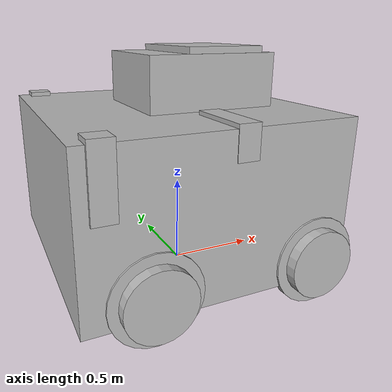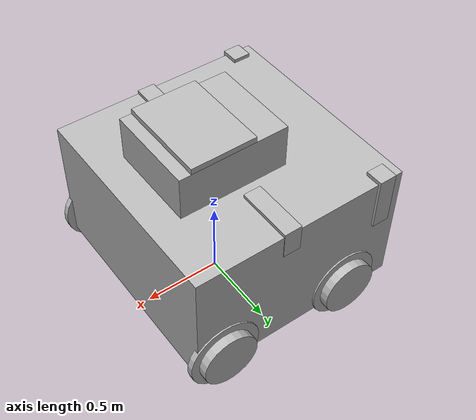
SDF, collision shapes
<?xml version='1.0' encoding='utf-8'?>
<sdf version="1.7">
  <model name="subway_v2">
    <link name="base_footprint">
      <inertial>
        <pose>0.003449 0.000193 0.448494 0 -0 0</pose>
        <mass>16.8848</mass>
        <inertia>
          <ixx>1.0012</ixx>
          <ixy>-0.000465875</ixy>
          <ixz>-0.0413279</ixz>
          <iyy>2.31374</iyy>
          <iyz>-0.00100541</iyz>
          <izz>2.80699</izz>
        </inertia>
      </inertial>
      <collision name="base_footprint_fixed_joint_lump__base_link_collision_collision">
        <pose>-0.081924 0 0.545704 -1.5708 -0 -1.5708</pose>
        <geometry>
          <box>
            <size>1.43104 0.829804 1.39646</size>
          </box>
        </geometry>
        <surface>
          <contact>
            <ode />
          </contact>
          <friction>
            <ode>
              <mu>0.001</mu>
              <mu2>0.001</mu2>
            </ode>
          </friction>
        </surface>
      </collision>
      <collision name="base_footprint_fixed_joint_lump__leida_collision_collision_1">
        <pose>0.501464 0 0.67493 -1.5708 -0 -1.5708</pose>
        <geometry>
          <box>
            <size>0.300638 0.186396 0.139496</size>
          </box>
        </geometry>
      </collision>
      <collision name="base_footprint_fixed_joint_lump__xj1_collision_collision_2">
        <pose>0.000225 -0.538469 0.895359 1.5708 0 -0</pose>
        <geometry>
          <box>
            <size>0.113792 0.17268 0.361088</size>
          </box>
        </geometry>
      </collision>
      <collision name="base_footprint_fixed_joint_lump__xj2_collision_collision_3">
        <pose>-0.000225 0.538469 0.895359 1.5708 -0 3.14159</pose>
        <geometry>
          <box>
            <size>0.113792 0.17268 0.361088</size>
          </box>
        </geometry>
      </collision>
      <collision name="base_footprint_fixed_joint_lump__xj3_collision_collision_4">
        <pose>-0.656669 -0.674932 0.810217 3.14159 0 -0</pose>
        <geometry>
          <box>
            <size>0.113792 0.114017 0.34874</size>
          </box>
        </geometry>
      </collision>
      <collision name="base_footprint_fixed_joint_lump__xj4_collision_collision_5">
        <pose>-0.657119 0.674932 0.810217 3.14159 -0 3.14159</pose>
        <geometry>
          <box>
            <size>0.113792 0.114017 0.34874</size>
          </box>
        </geometry>
      </collision>
      <collision name="base_footprint_fixed_joint_lump__yuntai_collision_collision_6">
        <pose>0.132241 0 0.949654 1.5708 0 -0</pose>
        <geometry>
          <box>
            <size>0.420893 0.657679 0.577225</size>
          </box>
        </geometry>
      </collision>
      <visual name="base_footprint_fixed_joint_lump__base_link_visual">
        <pose>0.032782 0.010309 0.644866 -1.5708 -0 -1.5708</pose>
        <geometry>
          <mesh>
            <scale>3.00638 3.00638 3.00638</scale>
            <uri>model://subway_v2/meshes/base_link.STL</uri>
          </mesh>
        </geometry>
      </visual>
      <visual name="base_footprint_fixed_joint_lump__w1_fixed_mount_visual_visual_1">
        <pose>0.435925 -0.44765 0.335209 1.5708 1.40236 -0</pose>
        <geometry>
          <mesh>
            <scale>3.00638 3.00638 3.00638</scale>
            <uri>model://subway_v2/meshes/w1_mount.STL</uri>
          </mesh>
        </geometry>
      </visual>
      <visual name="base_footprint_fixed_joint_lump__w2_fixed_mount_visual_visual_2">
        <pose>0.435925 0.44765 0.335209 1.5708 -1.40236 3.14159</pose>
        <geometry>
          <mesh>
            <scale>3.00638 3.00638 3.00638</scale>
            <uri>model://subway_v2/meshes/w2_mount.STL</uri>
          </mesh>
        </geometry>
      </visual>
      <visual name="base_footprint_fixed_joint_lump__w3_fixed_mount_visual_visual_3">
        <pose>-0.435925 0.44765 0.335209 1.5708 -0.502733 3.14159</pose>
        <geometry>
          <mesh>
            <scale>3.00638 3.00638 3.00638</scale>
            <uri>model://subway_v2/meshes/w3_mount.STL</uri>
          </mesh>
        </geometry>
      </visual>
      <visual name="base_footprint_fixed_joint_lump__w4_fixed_mount_visual_visual_4">
        <pose>-0.435925 -0.44765 0.335209 1.5708 0.502733 -0</pose>
        <geometry>
          <mesh>
            <scale>3.00638 3.00638 3.00638</scale>
            <uri>model://subway_v2/meshes/w4_mount.STL</uri>
          </mesh>
        </geometry>
      </visual>
      <visual name="base_footprint_fixed_joint_lump__xj1_visual_5">
        <pose>-0 -0.481021 0.685452 1.5708 0 -0</pose>
        <geometry>
          <mesh>
            <scale>3.00638 3.00638 3.00638</scale>
            <uri>model://subway_v2/meshes/xj1.STL</uri>
          </mesh>
        </geometry>
      </visual>
      <visual name="base_footprint_fixed_joint_lump__xj2_visual_6">
        <pose>-0 0.481021 0.685452 1.5708 -0 3.14159</pose>
        <geometry>
          <mesh>
            <scale>3.00638 3.00638 3.00638</scale>
            <uri>model://subway_v2/meshes/xj2.STL</uri>
          </mesh>
        </geometry>
      </visual>
      <visual name="base_footprint_fixed_joint_lump__xj3_visual_7">
        <pose>-0.656894 -0.674932 0.966549 3.14159 0 -0</pose>
        <geometry>
          <mesh>
            <scale>3.00638 3.00638 3.00638</scale>
            <uri>model://subway_v2/meshes/xj3.STL</uri>
          </mesh>
        </geometry>
      </visual>
      <visual name="base_footprint_fixed_joint_lump__xj4_visual_8">
        <pose>-0.656894 0.674932 0.966549 3.14159 -0 3.14159</pose>
        <geometry>
          <mesh>
            <scale>3.00638 3.00638 3.00638</scale>
            <uri>model://subway_v2/meshes/xj4.STL</uri>
          </mesh>
        </geometry>
      </visual>
      <visual name="base_footprint_fixed_joint_lump__yuntai_visual_9">
        <pose>0.132241 -0.232393 1.14393 1.5708 0 -0</pose>
        <geometry>
          <mesh>
            <scale>3.00638 3.00638 3.00638</scale>
            <uri>model://subway_v2/meshes/yuntai.STL</uri>
          </mesh>
        </geometry>
      </visual>
      <sensor name="xj1_camera_sensor" type="camera">
        <always_on>1</always_on>
        <visualize>0</visualize>
        <update_rate>30</update_rate>
        <camera name="xj1_camera">
          <horizontal_fov>1.22173</horizontal_fov>
          <image>
            <width>1440</width>
            <height>1080</height>
            <format>B8G8R8</format>
          </image>
          <clip>
            <near>0.05</near>
            <far>100</far>
          </clip>
          <noise>
            <type>gaussian</type>
            <mean>0</mean>
            <stddev>0.01</stddev>
          </noise>
          <distortion>
            <k1>-0.099402</k1>
            <k2>0.115175</k2>
            <k3>0.0</k3>
            <p1>-0.003985</p1>
            <p2>-0.001845</p2>
            <center>0.4835390972222 0.5071845925926</center>
          </distortion>
          <lens>
            <intrinsics>
              <fx>1028.2670861548688</fx>
              <fy>1028.3315643616631</fy>
              <cx>696.2963</cx>
              <cy>547.75936</cy>
              <s>0</s>
            </intrinsics>
            <type>stereographic</type>
            <scale_to_hfov>1</scale_to_hfov>
          </lens>
        </camera>
        <plugin name="xj1_camera_plugin" filename="libgazebo_ros_camera.so">
          <ros>
            <namespace>/subway_v2</namespace>
          </ros>
          <camera_name>xj1</camera_name>
          <frame_name>xj1_optical_frame</frame_name>
          <focal_length>1028.2670861548688</focal_length>
          <cx>696.2963</cx>
          <cy>547.75936</cy>
          <border_crop>0</border_crop>
          <rectification_matrix>1 0 0 0 1 0 0 0 1</rectification_matrix>
          <P_fx>1013.3186295621878</P_fx>
          <P_fy>1018.5246022239418</P_fy>
          <P_cx>693.56983</P_cx>
          <P_cy>545.3029</P_cy>
        </plugin>
        <pose>-0 -0.536573 0.685452 -0 -0.436332 -1.5708</pose>
      </sensor>
      <sensor name="xj2_camera_sensor" type="camera">
        <always_on>1</always_on>
        <visualize>0</visualize>
        <update_rate>30</update_rate>
        <camera name="xj2_camera">
          <horizontal_fov>1.22173</horizontal_fov>
          <image>
            <width>1440</width>
            <height>1080</height>
            <format>B8G8R8</format>
          </image>
          <clip>
            <near>0.05</near>
            <far>100</far>
          </clip>
          <noise>
            <type>gaussian</type>
            <mean>0</mean>
            <stddev>0.01</stddev>
          </noise>
          <distortion>
            <k1>-0.099402</k1>
            <k2>0.115175</k2>
            <k3>0.0</k3>
            <p1>-0.003985</p1>
            <p2>-0.001845</p2>
            <center>0.4835390972222 0.5071845925926</center>
          </distortion>
          <lens>
            <intrinsics>
              <fx>1028.2670861548688</fx>
              <fy>1028.3315643616631</fy>
              <cx>696.2963</cx>
              <cy>547.75936</cy>
              <s>0</s>
            </intrinsics>
            <type>stereographic</type>
            <scale_to_hfov>1</scale_to_hfov>
          </lens>
        </camera>
        <plugin name="xj2_camera_plugin" filename="libgazebo_ros_camera.so">
          <ros>
            <namespace>/subway_v2</namespace>
          </ros>
          <camera_name>xj2</camera_name>
          <frame_name>xj2_optical_frame</frame_name>
          <focal_length>1028.2670861548688</focal_length>
          <cx>696.2963</cx>
          <cy>547.75936</cy>
          <border_crop>0</border_crop>
          <rectification_matrix>1 0 0 0 1 0 0 0 1</rectification_matrix>
          <P_fx>1013.3186295621878</P_fx>
          <P_fy>1018.5246022239418</P_fy>
          <P_cx>693.56983</P_cx>
          <P_cy>545.3029</P_cy>
        </plugin>
        <pose>-0 0.727544 0.685452 0 -0.436332 1.5708</pose>
      </sensor>
      <sensor name="xj3_camera_sensor" type="camera">
        <always_on>1</always_on>
        <visualize>0</visualize>
        <update_rate>30</update_rate>
        <camera name="xj3_camera">
          <horizontal_fov>1.22173</horizontal_fov>
          <image>
            <width>1440</width>
            <height>1080</height>
            <format>B8G8R8</format>
          </image>
          <clip>
            <near>0.05</near>
            <far>100</far>
          </clip>
          <noise>
            <type>gaussian</type>
            <mean>0</mean>
            <stddev>0.01</stddev>
          </noise>
          <distortion>
            <k1>-0.099402</k1>
            <k2>0.115175</k2>
            <k3>0.0</k3>
            <p1>-0.003985</p1>
            <p2>-0.001845</p2>
            <center>0.4835390972222 0.5071845925926</center>
          </distortion>
          <lens>
            <intrinsics>
              <fx>1028.2670861548688</fx>
              <fy>1028.3315643616631</fy>
              <cx>696.2963</cx>
              <cy>547.75936</cy>
              <s>0</s>
            </intrinsics>
            <type>stereographic</type>
            <scale_to_hfov>1</scale_to_hfov>
          </lens>
        </camera>
        <plugin name="xj3_camera_plugin" filename="libgazebo_ros_camera.so">
          <ros>
            <namespace>/subway_v2</namespace>
          </ros>
          <camera_name>xj3</camera_name>
          <frame_name>xj3_optical_frame</frame_name>
          <focal_length>1028.2670861548688</focal_length>
          <cx>696.2963</cx>
          <cy>547.75936</cy>
          <border_crop>0</border_crop>
          <rectification_matrix>1 0 0 0 1 0 0 0 1</rectification_matrix>
          <P_fx>1013.3186295621878</P_fx>
          <P_fy>1018.5246022239418</P_fy>
          <P_cx>693.56983</P_cx>
          <P_cy>545.3029</P_cy>
        </plugin>
        <pose>-0.656894 -0.674932 0.629834 -0 1.309 -1.5708</pose>
      </sensor>
      <sensor name="xj4_camera_sensor" type="camera">
        <always_on>1</always_on>
        <visualize>0</visualize>
        <update_rate>30</update_rate>
        <camera name="xj4_camera">
          <horizontal_fov>0.784537</horizontal_fov>
          <image>
            <width>1440</width>
            <height>1080</height>
            <format>B8G8R8</format>
          </image>
          <clip>
            <near>0.05</near>
            <far>100</far>
          </clip>
          <noise>
            <type>gaussian</type>
            <mean>0</mean>
            <stddev>0.01</stddev>
          </noise>
          <distortion>
            <k1>-0.099402</k1>
            <k2>0.115175</k2>
            <k3>0.0</k3>
            <p1>-0.003985</p1>
            <p2>-0.001845</p2>
            <center>0.4835390972222 0.5071845925926</center>
          </distortion>
          <lens>
            <intrinsics>
              <fx>1740.3529088647258</fx>
              <fy>1740.4620389110569</fy>
              <cx>696.2963</cx>
              <cy>547.75936</cy>
              <s>0</s>
            </intrinsics>
            <type>stereographic</type>
            <scale_to_hfov>1</scale_to_hfov>
          </lens>
        </camera>
        <plugin name="xj4_camera_plugin" filename="libgazebo_ros_camera.so">
          <ros>
            <namespace>/subway_v2</namespace>
          </ros>
          <camera_name>xj4</camera_name>
          <frame_name>xj4_optical_frame</frame_name>
          <focal_length>1740.3529088647258</focal_length>
          <cx>696.2963</cx>
          <cy>547.75936</cy>
          <border_crop>0</border_crop>
          <rectification_matrix>1 0 0 0 1 0 0 0 1</rectification_matrix>
          <P_fx>1715.0524881234628</P_fx>
          <P_fy>1723.8636518642318</P_fy>
          <P_cx>693.56983</P_cx>
          <P_cy>545.3029</P_cy>
        </plugin>
        <pose>-0.656894 0.674932 0.735057 3.14159 1.57079 -1.57079</pose>
      </sensor>
    </link>
    <joint name="lidar_joint" type="fixed">
      <pose relative_to="base_footprint">0.574218 0 0.680943 0 0 -0</pose>
      <parent>base_footprint</parent>
      <child>lidar_link</child>
      <axis>
        <dynamics>
          <spring_reference>0</spring_reference>
          <spring_stiffness>0</spring_stiffness>
        </dynamics>
        <xyz>0 0 1</xyz>
        <limit>
          <lower>-1e+16</lower>
          <upper>1e+16</upper>
        </limit>
      </axis>
      <physics>
        <ode>
          <limit>
            <cfm>0</cfm>
            <erp>0.2</erp>
          </limit>
        </ode>
      </physics>
    </joint>
    <link name="lidar_link">
      <pose relative_to="lidar_joint">0 0 0 0 -0 0</pose>
      <inertial>
        <pose>0 0 0 0 -0 0</pose>
        <mass>0.001</mass>
        <inertia>
          <ixx>9.03832e-06</ixx>
          <ixy>0</ixy>
          <ixz>0</ixz>
          <iyy>9.03832e-06</iyy>
          <iyz>0</iyz>
          <izz>9.03832e-06</izz>
        </inertia>
      </inertial>
      <sensor name="odin1_lidar" type="gpu_ray">
        <always_on>1</always_on>
        <visualize>0</visualize>
        <pose>0 0 0 0 -0 0</pose>
        <update_rate>10</update_rate>
        <ray>
          <scan>
            <horizontal>
              <samples>240</samples>
              <resolution>1</resolution>
              <min_angle>-1.0472</min_angle>
              <max_angle>1.0472</max_angle>
            </horizontal>
            <vertical>
              <samples>180</samples>
              <resolution>1</resolution>
              <min_angle>-0.785398</min_angle>
              <max_angle>0.785398</max_angle>
            </vertical>
          </scan>
          <range>
            <min>0.2</min>
            <max>30</max>
            <resolution>0.01</resolution>
          </range>
          <noise>
            <type>gaussian</type>
            <mean>0</mean>
            <stddev>0.03</stddev>
          </noise>
        </ray>
        <plugin name="odin1_pointcloud_plugin" filename="libgazebo_ros_ray_sensor.so">
          <ros>
            <namespace>/odin1</namespace>
            <remapping>~/out:=cloud_raw</remapping>
          </ros>
          <output_type>sensor_msgs/PointCloud2</output_type>
          <frame_name>lidar_link</frame_name>
        </plugin>
      </sensor>
      <sensor name="odin1_rgb_camera" type="camera">
        <always_on>1</always_on>
        <visualize>0</visualize>
        <update_rate>10</update_rate>
        <pose>0.01462 0.034376 0.000445 -0.00208 -0.0061 -0.01139</pose>
        <camera name="odin1_rgb">
          <horizontal_fov>1.6527705344413242</horizontal_fov>
          <image>
            <width>1600</width>
            <height>1296</height>
            <format>R8G8B8</format>
          </image>
          <clip>
            <near>0.1</near>
            <far>100</far>
          </clip>
          <lens>
            <intrinsics>
              <fx>736.9688</fx>
              <fy>737.0365</fy>
              <cx>766.6570</cx>
              <cy>642.9091</cy>
              <s>0.2058</s>
            </intrinsics>
            <type>stereographic</type>
            <scale_to_hfov>1</scale_to_hfov>
          </lens>
        </camera>
        <plugin name="odin1_rgb_camera_plugin" filename="libgazebo_ros_camera.so">
          <ros>
            <namespace>/odin1</namespace>
            <remapping>rgb/camera_info:=rgb/camera_info_gazebo</remapping>
          </ros>
          <camera_name>rgb</camera_name>
          <frame_name>odin1_rgb_optical_frame</frame_name>
          <cx>766.6570</cx>
          <cy>642.9091</cy>
          <border_crop>0</border_crop>
          <rectification_matrix>1 0 0 0 1 0 0 0 1</rectification_matrix>
          <P_fx>736.9688</P_fx>
          <P_fy>737.0365</P_fy>
          <P_cx>766.6570</P_cx>
          <P_cy>642.9091</P_cy>
        </plugin>
      </sensor>
    </link>
    <joint name="imu_joint" type="fixed">
      <pose relative_to="lidar_link">0.02663 -0.03447 -0.02174 0 -0 0</pose>
      <parent>lidar_link</parent>
      <child>imu_link</child>
      <axis>
        <dynamics>
          <spring_reference>0</spring_reference>
          <spring_stiffness>0</spring_stiffness>
        </dynamics>
        <xyz>0 0 1</xyz>
        <limit>
          <lower>-1e+16</lower>
          <upper>1e+16</upper>
        </limit>
      </axis>
      <physics>
        <ode>
          <limit>
            <cfm>0</cfm>
            <erp>0.2</erp>
          </limit>
        </ode>
      </physics>
    </joint>
    <link name="imu_link">
      <pose relative_to="imu_joint">0 0 0 0 -0 0</pose>
      <inertial>
        <pose>0 0 0 0 -0 0</pose>
        <mass>0.001</mass>
        <inertia>
          <ixx>9.03832e-06</ixx>
          <ixy>0</ixy>
          <ixz>0</ixz>
          <iyy>9.03832e-06</iyy>
          <iyz>0</iyz>
          <izz>9.03832e-06</izz>
        </inertia>
      </inertial>
      <sensor name="odin1_imu" type="imu">
        <always_on>1</always_on>
        <update_rate>100</update_rate>
        <imu>
          <angular_velocity>
            <x>
              <noise type="gaussian">
                <mean>0</mean>
                <stddev>0.0002</stddev>
              </noise>
            </x>
            <y>
              <noise type="gaussian">
                <mean>0</mean>
                <stddev>0.0002</stddev>
              </noise>
            </y>
            <z>
              <noise type="gaussian">
                <mean>0</mean>
                <stddev>0.0002</stddev>
              </noise>
            </z>
          </angular_velocity>
          <linear_acceleration>
            <x>
              <noise type="gaussian">
                <mean>0</mean>
                <stddev>0.017</stddev>
              </noise>
            </x>
            <y>
              <noise type="gaussian">
                <mean>0</mean>
                <stddev>0.017</stddev>
              </noise>
            </y>
            <z>
              <noise type="gaussian">
                <mean>0</mean>
                <stddev>0.017</stddev>
              </noise>
            </z>
          </linear_acceleration>
        </imu>
        <plugin name="odin1_imu_plugin" filename="libgazebo_ros_imu_sensor.so">
          <initial_orientation_as_reference>0</initial_orientation_as_reference>
          <ros>
            <namespace>/odin1</namespace>
            <remapping>~/out:=imu</remapping>
          </ros>
        </plugin>
      </sensor>
    </link>
    <joint name="w1_joint" type="revolute">
      <pose relative_to="base_footprint">0.435925 -0.754 0.232992 1.5708 1.40236 -0</pose>
      <parent>base_footprint</parent>
      <child>w1</child>
      <axis>
        <xyz>0 0 -1</xyz>
        <limit>
          <lower>-1e+16</lower>
          <upper>1e+16</upper>
        </limit>
        <dynamics>
          <damping>0.2</damping>
          <friction>0.05</friction>
          <spring_reference>0</spring_reference>
          <spring_stiffness>0</spring_stiffness>
        </dynamics>
      </axis>
    </joint>
    <link name="w1">
      <pose relative_to="w1_joint">0 0 0 0 -0 0</pose>
      <inertial>
        <pose>0 0 -0.029012 0 -0 0</pose>
        <mass>0.5</mass>
        <inertia>
          <ixx>0.00734293</ixx>
          <ixy>0</ixy>
          <ixz>0</ixz>
          <iyy>0.00734293</iyy>
          <iyz>0</iyz>
          <izz>0.0135716</izz>
        </inertia>
      </inertial>
      <collision name="w1_tread_collision_collision">
        <pose>0 0 0 0 -0 0</pose>
        <geometry>
          <cylinder>
            <length>0.0571212</length>
            <radius>0.180383</radius>
          </cylinder>
        </geometry>
        <surface>
          <contact>
            <ode>
              <kp>1e+06</kp>
              <kd>10</kd>
              <max_vel>0.1</max_vel>
              <min_depth>0.001</min_depth>
            </ode>
          </contact>
          <friction>
            <ode>
              <mu>1</mu>
              <mu2>1</mu2>
            </ode>
          </friction>
        </surface>
      </collision>
      <collision name="w1_flange_collision_collision_1">
        <pose>0 0 -0.048102 0 -0 0</pose>
        <geometry>
          <cylinder>
            <length>0.0390829</length>
            <radius>0.232994</radius>
          </cylinder>
        </geometry>
        <surface>
          <contact>
            <ode>
              <kp>1e+06</kp>
              <kd>10</kd>
              <max_vel>0.1</max_vel>
              <min_depth>0.001</min_depth>
            </ode>
          </contact>
          <friction>
            <ode>
              <mu>1</mu>
              <mu2>1</mu2>
            </ode>
          </friction>
        </surface>
      </collision>
      <visual name="w1_visual">
        <pose>-0.10077 0.017136 -0.30635 0 -0 0</pose>
        <geometry>
          <mesh>
            <scale>3.00638 3.00638 3.00638</scale>
            <uri>model://subway_v2/meshes/w1_wheel.STL</uri>
          </mesh>
        </geometry>
      </visual>
    </link>
    <joint name="w2_joint" type="revolute">
      <pose relative_to="base_footprint">0.435925 0.754 0.232992 1.5708 -1.40236 3.14159</pose>
      <parent>base_footprint</parent>
      <child>w2</child>
      <axis>
        <xyz>0 0 1</xyz>
        <limit>
          <lower>-1e+16</lower>
          <upper>1e+16</upper>
        </limit>
        <dynamics>
          <damping>0.2</damping>
          <friction>0.05</friction>
          <spring_reference>0</spring_reference>
          <spring_stiffness>0</spring_stiffness>
        </dynamics>
      </axis>
    </joint>
    <link name="w2">
      <pose relative_to="w2_joint">0 0 0 0 -0 0</pose>
      <inertial>
        <pose>0 0 -0.029012 0 -0 0</pose>
        <mass>0.5</mass>
        <inertia>
          <ixx>0.00734293</ixx>
          <ixy>0</ixy>
          <ixz>0</ixz>
          <iyy>0.00734293</iyy>
          <iyz>0</iyz>
          <izz>0.0135716</izz>
        </inertia>
      </inertial>
      <collision name="w2_tread_collision_collision">
        <pose>0 0 0 0 -0 0</pose>
        <geometry>
          <cylinder>
            <length>0.0571212</length>
            <radius>0.180383</radius>
          </cylinder>
        </geometry>
        <surface>
          <contact>
            <ode>
              <kp>1e+06</kp>
              <kd>10</kd>
              <max_vel>0.1</max_vel>
              <min_depth>0.001</min_depth>
            </ode>
          </contact>
          <friction>
            <ode>
              <mu>1</mu>
              <mu2>1</mu2>
            </ode>
          </friction>
        </surface>
      </collision>
      <collision name="w2_flange_collision_collision_1">
        <pose>0 0 -0.048102 0 -0 0</pose>
        <geometry>
          <cylinder>
            <length>0.0390829</length>
            <radius>0.232994</radius>
          </cylinder>
        </geometry>
        <surface>
          <contact>
            <ode>
              <kp>1e+06</kp>
              <kd>10</kd>
              <max_vel>0.1</max_vel>
              <min_depth>0.001</min_depth>
            </ode>
          </contact>
          <friction>
            <ode>
              <mu>1</mu>
              <mu2>1</mu2>
            </ode>
          </friction>
        </surface>
      </collision>
      <visual name="w2_visual">
        <pose>0.10077 0.017136 -0.30635 0 -0 0</pose>
        <geometry>
          <mesh>
            <scale>3.00638 3.00638 3.00638</scale>
            <uri>model://subway_v2/meshes/w2_wheel.STL</uri>
          </mesh>
        </geometry>
      </visual>
    </link>
    <joint name="w3_joint" type="revolute">
      <pose relative_to="base_footprint">-0.435925 0.754 0.232992 1.5708 -0.502733 3.14159</pose>
      <parent>base_footprint</parent>
      <child>w3</child>
      <axis>
        <xyz>0 0 1</xyz>
        <limit>
          <lower>-1e+16</lower>
          <upper>1e+16</upper>
        </limit>
        <dynamics>
          <damping>0.2</damping>
          <friction>0.05</friction>
          <spring_reference>0</spring_reference>
          <spring_stiffness>0</spring_stiffness>
        </dynamics>
      </axis>
    </joint>
    <link name="w3">
      <pose relative_to="w3_joint">0 0 0 0 -0 0</pose>
      <inertial>
        <pose>0 0 -0.029012 0 -0 0</pose>
        <mass>0.5</mass>
        <inertia>
          <ixx>0.00734293</ixx>
          <ixy>0</ixy>
          <ixz>0</ixz>
          <iyy>0.00734293</iyy>
          <iyz>0</iyz>
          <izz>0.0135716</izz>
        </inertia>
      </inertial>
      <collision name="w3_tread_collision_collision">
        <pose>0 0 0 0 -0 0</pose>
        <geometry>
          <cylinder>
            <length>0.0571212</length>
            <radius>0.180383</radius>
          </cylinder>
        </geometry>
        <surface>
          <contact>
            <ode>
              <kp>1e+06</kp>
              <kd>10</kd>
              <max_vel>0.1</max_vel>
              <min_depth>0.001</min_depth>
            </ode>
          </contact>
          <friction>
            <ode>
              <mu>1</mu>
              <mu2>1</mu2>
            </ode>
          </friction>
        </surface>
      </collision>
      <collision name="w3_flange_collision_collision_1">
        <pose>0 0 -0.048102 0 -0 0</pose>
        <geometry>
          <cylinder>
            <length>0.0390829</length>
            <radius>0.232994</radius>
          </cylinder>
        </geometry>
        <surface>
          <contact>
            <ode>
              <kp>1e+06</kp>
              <kd>10</kd>
              <max_vel>0.1</max_vel>
              <min_depth>0.001</min_depth>
            </ode>
          </contact>
          <friction>
            <ode>
              <mu>1</mu>
              <mu2>1</mu2>
            </ode>
          </friction>
        </surface>
      </collision>
      <visual name="w3_visual">
        <pose>0.04925 0.08957 -0.30635 0 -0 0</pose>
        <geometry>
          <mesh>
            <scale>3.00638 3.00638 3.00638</scale>
            <uri>model://subway_v2/meshes/w3_wheel.STL</uri>
          </mesh>
        </geometry>
      </visual>
    </link>
    <joint name="w4_joint" type="revolute">
      <pose relative_to="base_footprint">-0.435925 -0.754 0.232992 1.5708 0.502733 -0</pose>
      <parent>base_footprint</parent>
      <child>w4</child>
      <axis>
        <xyz>0 0 -1</xyz>
        <limit>
          <lower>-1e+16</lower>
          <upper>1e+16</upper>
        </limit>
        <dynamics>
          <damping>0.2</damping>
          <friction>0.05</friction>
          <spring_reference>0</spring_reference>
          <spring_stiffness>0</spring_stiffness>
        </dynamics>
      </axis>
    </joint>
    <link name="w4">
      <pose relative_to="w4_joint">0 0 0 0 -0 0</pose>
      <inertial>
        <pose>0 0 -0.029012 0 -0 0</pose>
        <mass>0.5</mass>
        <inertia>
          <ixx>0.00734293</ixx>
          <ixy>0</ixy>
          <ixz>0</ixz>
          <iyy>0.00734293</iyy>
          <iyz>0</iyz>
          <izz>0.0135716</izz>
        </inertia>
      </inertial>
      <collision name="w4_tread_collision_collision">
        <pose>0 0 0 0 -0 0</pose>
        <geometry>
          <cylinder>
            <length>0.0571212</length>
            <radius>0.180383</radius>
          </cylinder>
        </geometry>
        <surface>
          <contact>
            <ode>
              <kp>1e+06</kp>
              <kd>10</kd>
              <max_vel>0.1</max_vel>
              <min_depth>0.001</min_depth>
            </ode>
          </contact>
          <friction>
            <ode>
              <mu>1</mu>
              <mu2>1</mu2>
            </ode>
          </friction>
        </surface>
      </collision>
      <collision name="w4_flange_collision_collision_1">
        <pose>0 0 -0.048102 0 -0 0</pose>
        <geometry>
          <cylinder>
            <length>0.0390829</length>
            <radius>0.232994</radius>
          </cylinder>
        </geometry>
        <surface>
          <contact>
            <ode>
              <kp>1e+06</kp>
              <kd>10</kd>
              <max_vel>0.1</max_vel>
              <min_depth>0.001</min_depth>
            </ode>
          </contact>
          <friction>
            <ode>
              <mu>1</mu>
              <mu2>1</mu2>
            </ode>
          </friction>
        </surface>
      </collision>
      <visual name="w4_visual">
        <pose>-0.04925 0.08957 -0.30635 0 -0 0</pose>
        <geometry>
          <mesh>
            <scale>3.00638 3.00638 3.00638</scale>
            <uri>model://subway_v2/meshes/w4_wheel.STL</uri>
          </mesh>
        </geometry>
      </visual>
    </link>
    <joint name="pitch_joint" type="revolute">
      <pose relative_to="base_footprint">0.132241 -0.232393 1.17399 -1.57188 -0 -1.5708</pose>
      <parent>base_footprint</parent>
      <child>pitch</child>
      <axis>
        <xyz>-1 0 0</xyz>
        <limit>
          <lower>-0.261799</lower>
          <upper>0.785398</upper>
          <effort>10</effort>
          <velocity>0.5</velocity>
        </limit>
        <dynamics>
          <damping>0.5</damping>
          <friction>0.1</friction>
          <spring_reference>0</spring_reference>
          <spring_stiffness>0</spring_stiffness>
        </dynamics>
      </axis>
    </joint>
    <link name="pitch">
      <pose relative_to="pitch_joint">0 0 0 0 -0 0</pose>
      <inertial>
        <pose>-0.232302 0.098188 -0.142523 0 -0 0</pose>
        <mass>1.90242</mass>
        <inertia>
          <ixx>0.019831</ixx>
          <ixy>2.88953e-09</ixy>
          <ixz>-3.09174e-05</ixz>
          <iyy>0.0463467</iyy>
          <iyz>0.000235653</iyz>
          <izz>0.0293978</izz>
        </inertia>
      </inertial>
      <collision name="pitch_collision_collision">
        <pose>-0.232393 0.115144 -0.065996 0 -0 0</pose>
        <geometry>
          <box>
            <size>0.582035 0.369785 0.705747</size>
          </box>
        </geometry>
      </collision>
      <visual name="pitch_visual">
        <pose>0 0 0 0 -0 0</pose>
        <geometry>
          <mesh>
            <scale>3.00638 3.00638 3.00638</scale>
            <uri>model://subway_v2/meshes/pitch.STL</uri>
          </mesh>
        </geometry>
      </visual>
      <sensor name="pitch_camera_sensor" type="camera">
        <always_on>1</always_on>
        <visualize>0</visualize>
        <update_rate>30</update_rate>
        <camera name="pitch_camera">
          <horizontal_fov>0.959931</horizontal_fov>
          <image>
            <width>1440</width>
            <height>1080</height>
            <format>B8G8R8</format>
          </image>
          <clip>
            <near>0.05</near>
            <far>100</far>
          </clip>
          <noise>
            <type>gaussian</type>
            <mean>0</mean>
            <stddev>0.01</stddev>
          </noise>
          <distortion>
            <k1>-0.099402</k1>
            <k2>0.115175</k2>
            <k3>0.0</k3>
            <p1>-0.003985</p1>
            <p2>-0.001845</p2>
            <center>0.4835390972222 0.5071845925926</center>
          </distortion>
          <lens>
            <intrinsics>
              <fx>1383.107281011723</fx>
              <fy>1383.1940097211066</fy>
              <cx>696.2963</cx>
              <cy>547.75936</cy>
              <s>0</s>
            </intrinsics>
            <type>stereographic</type>
            <scale_to_hfov>1</scale_to_hfov>
          </lens>
        </camera>
        <plugin name="pitch_camera_plugin" filename="libgazebo_ros_camera.so">
          <ros>
            <namespace>/subway_v2</namespace>
          </ros>
          <camera_name>pitch_camera</camera_name>
          <frame_name>pitch_camera_optical_frame</frame_name>
          <focal_length>1383.107281011723</focal_length>
          <cx>696.2963</cx>
          <cy>547.75936</cy>
          <border_crop>0</border_crop>
          <rectification_matrix>1 0 0 0 1 0 0 0 1</rectification_matrix>
          <P_fx>1363.000326863712</P_fx>
          <P_fy>1370.0028058793007</P_fy>
          <P_cx>693.56983</P_cx>
          <P_cy>545.3029</P_cy>
        </plugin>
        <pose>-0.232393 -0.077223 0.287265 -3.14159 -0.260712 -1.5708</pose>
      </sensor>
    </link>
    <static>0</static>
    <plugin name="subway_v2_diff_drive" filename="libgazebo_ros_diff_drive.so">
      <ros>
        <remapping>cmd_vel:=cmd_vel_drive</remapping>
        <remapping>odom:=wheel/odom_raw</remapping>
      </ros>
      <update_rate>100</update_rate>
      <num_wheel_pairs>2</num_wheel_pairs>
      <left_joint>w2_joint</left_joint>
      <right_joint>w1_joint</right_joint>
      <left_joint>w3_joint</left_joint>
      <right_joint>w4_joint</right_joint>
      <wheel_separation>1.508</wheel_separation>
      <wheel_separation>1.508</wheel_separation>
      <wheel_diameter>0.360765550239234</wheel_diameter>
      <wheel_diameter>0.360765550239234</wheel_diameter>
      <max_wheel_torque>40</max_wheel_torque>
      <max_wheel_acceleration>1.0</max_wheel_acceleration>
      <publish_odom>1</publish_odom>
      <publish_odom_tf>0</publish_odom_tf>
      <publish_wheel_tf>0</publish_wheel_tf>
      <odometry_frame>odom</odometry_frame>
      <robot_base_frame>base_footprint</robot_base_frame>
    </plugin>
    <plugin name="subway_v2_joint_state" filename="libgazebo_ros_joint_state_publisher.so">
      <ros>
        <remapping>~/out:=joint_states</remapping>
      </ros>
      <update_rate>30</update_rate>
      <joint_name>w1_joint</joint_name>
      <joint_name>w2_joint</joint_name>
      <joint_name>w3_joint</joint_name>
      <joint_name>w4_joint</joint_name>
      <joint_name>pitch_joint</joint_name>
    </plugin>
    <plugin name="subway_v2_pitch_control" filename="libgazebo_ros2_control.so">
      <ros>
        <namespace>/subway_v2</namespace>
      </ros>
      <robot_param>robot_description</robot_param>
      <robot_param_node>/robot_state_publisher</robot_param_node>
      <parameters>ros_ws/src/metro_description/config/subway_v2_controllers.yaml</parameters>
      <hold_joints>1</hold_joints>
    </plugin>
  </model>
</sdf>
